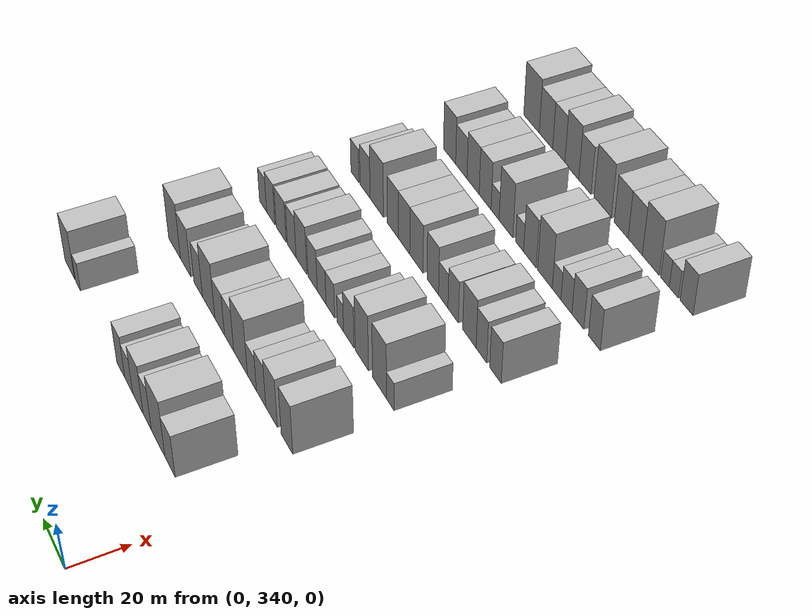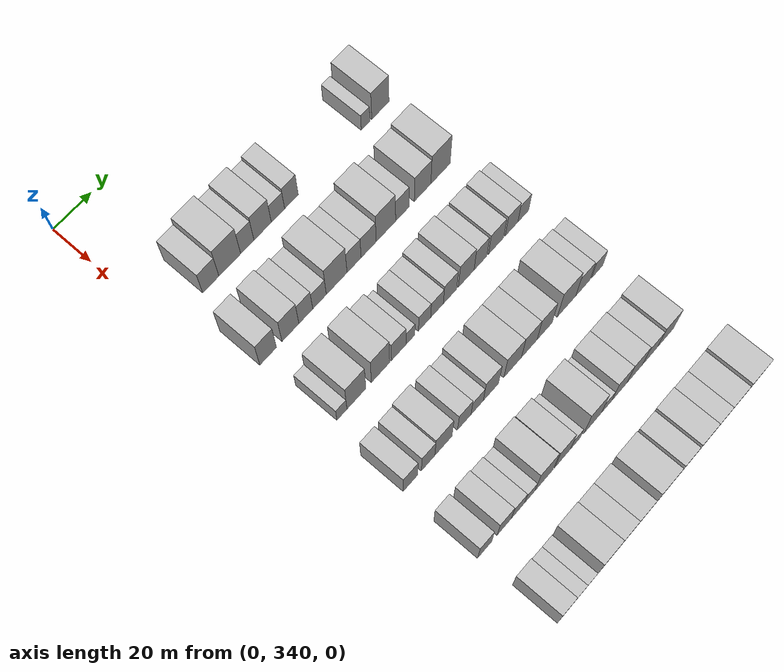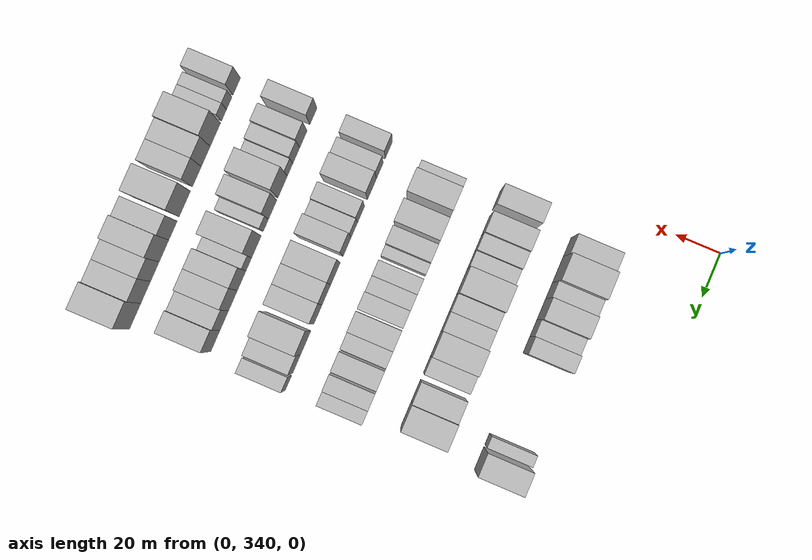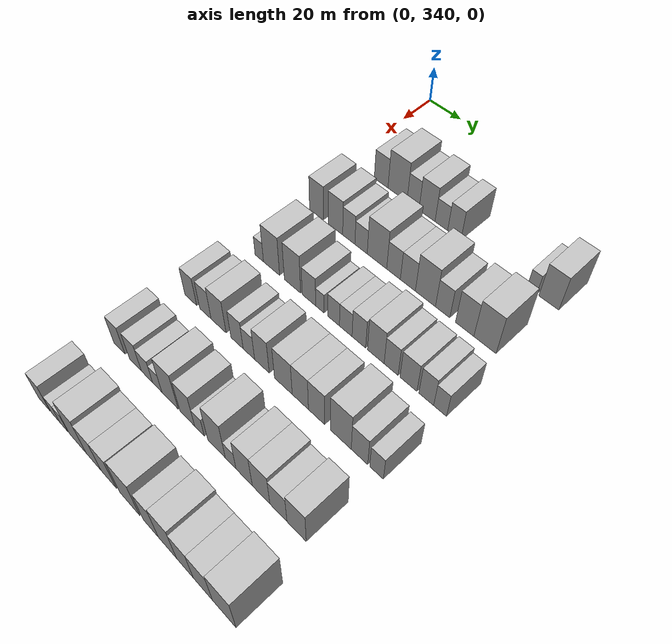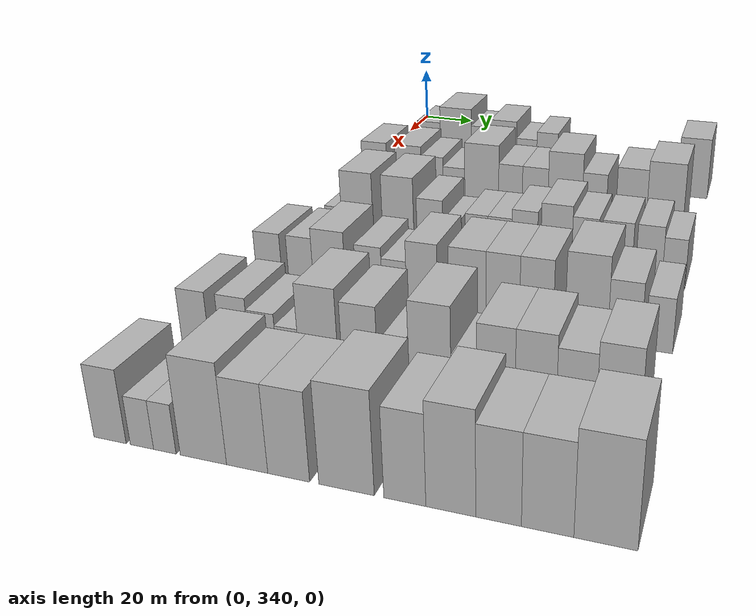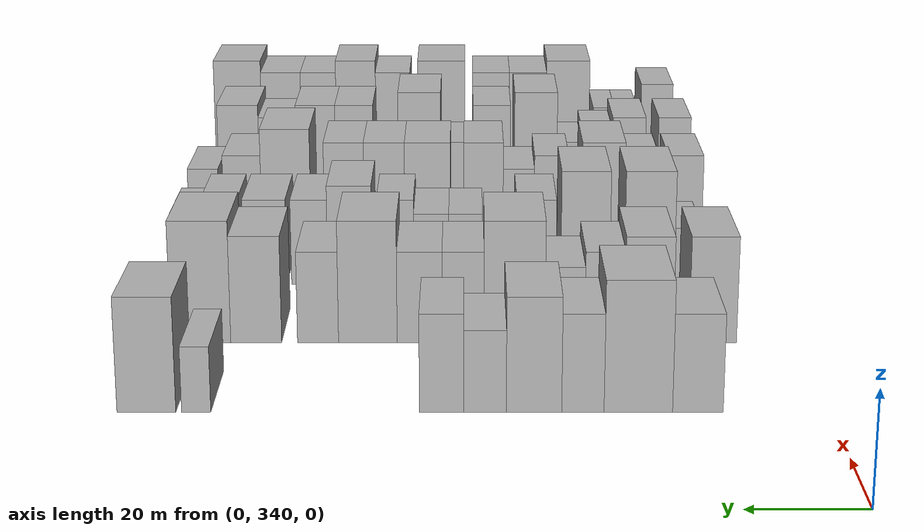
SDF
<sdf version="1.6">
 <world name="default">
  <model name="building_105">
   <static>1</static>
   <pose>50.0000 362.7475 0 0.000000 0.000000 0.000000</pose>
   <link name="link">
    <pose>0 0 9.00 0 0 0</pose>
    <collision name="collision"><geometry><box><size>20.0000 8.7498 18.0000</size></box></geometry></collision>
    <visual name="visual">
     <cast_shadows>0</cast_shadows>
     <geometry><box><size>20.0000 8.7498 18.0000</size></box></geometry>
     <material>
      <script>
       <uri>model://HANNAS_wall/materials/scripts</uri>
       <uri>model://HANNAS_wall/materials/textures</uri>
       <name>vrc/HANNAS_wall</name>
      </script>
     </material>
    </visual>
   </link>
  </model>
  <model name="building_106">
   <static>1</static>
   <pose>50.0000 373.0468 0 0.000000 0.000000 0.000000</pose>
   <link name="link">
    <pose>0 0 12.00 0 0 0</pose>
    <collision name="collision"><geometry><box><size>20.0000 11.8487 24.0000</size></box></geometry></collision>
    <visual name="visual">
     <cast_shadows>0</cast_shadows>
     <geometry><box><size>20.0000 11.8487 24.0000</size></box></geometry>
     <material>
      <script>
       <uri>model://HANNAS_wall/materials/scripts</uri>
       <uri>model://HANNAS_wall/materials/textures</uri>
       <name>vrc/HANNAS_wall</name>
      </script>
     </material>
    </visual>
   </link>
  </model>
  <model name="building_107">
   <static>1</static>
   <pose>50.0000 382.6306 0 0.000000 0.000000 0.000000</pose>
   <link name="link">
    <pose>0 0 9.00 0 0 0</pose>
    <collision name="collision"><geometry><box><size>20.0000 7.3190 18.0000</size></box></geometry></collision>
    <visual name="visual">
     <cast_shadows>0</cast_shadows>
     <geometry><box><size>20.0000 7.3190 18.0000</size></box></geometry>
     <material>
      <script>
       <uri>model://HANNAS_wall/materials/scripts</uri>
       <uri>model://HANNAS_wall/materials/textures</uri>
       <name>vrc/HANNAS_wall</name>
      </script>
     </material>
    </visual>
   </link>
  </model>
  <model name="building_108">
   <static>1</static>
   <pose>50.0000 391.0773 0 0.000000 0.000000 0.000000</pose>
   <link name="link">
    <pose>0 0 10.50 0 0 0</pose>
    <collision name="collision"><geometry><box><size>20.0000 9.5745 21.0000</size></box></geometry></collision>
    <visual name="visual">
     <cast_shadows>0</cast_shadows>
     <geometry><box><size>20.0000 9.5745 21.0000</size></box></geometry>
     <material>
      <script>
       <uri>model://HANNAS_wall/materials/scripts</uri>
       <uri>model://HANNAS_wall/materials/textures</uri>
       <name>vrc/HANNAS_wall</name>
      </script>
     </material>
    </visual>
   </link>
  </model>
  <model name="building_109">
   <static>1</static>
   <pose>50.0000 399.5561 0 0.000000 0.000000 0.000000</pose>
   <link name="link">
    <pose>0 0 7.50 0 0 0</pose>
    <collision name="collision"><geometry><box><size>20.0000 7.3830 15.0000</size></box></geometry></collision>
    <visual name="visual">
     <cast_shadows>0</cast_shadows>
     <geometry><box><size>20.0000 7.3830 15.0000</size></box></geometry>
     <material>
      <script>
       <uri>model://HANNAS_wall/materials/scripts</uri>
       <uri>model://HANNAS_wall/materials/textures</uri>
       <name>vrc/HANNAS_wall</name>
      </script>
     </material>
    </visual>
   </link>
  </model>
  <model name="building_110">
   <static>1</static>
   <pose>50.0000 407.0651 0 0.000000 0.000000 0.000000</pose>
   <link name="link">
    <pose>0 0 9.00 0 0 0</pose>
    <collision name="collision"><geometry><box><size>20.0000 7.6351 18.0000</size></box></geometry></collision>
    <visual name="visual">
     <cast_shadows>0</cast_shadows>
     <geometry><box><size>20.0000 7.6351 18.0000</size></box></geometry>
     <material>
      <script>
       <uri>model://HANNAS_wall/materials/scripts</uri>
       <uri>model://HANNAS_wall/materials/textures</uri>
       <name>vrc/HANNAS_wall</name>
      </script>
     </material>
    </visual>
   </link>
  </model>
  <model name="building_111">
   <static>1</static>
   <pose>50.0000 449.4591 0 0.000000 0.000000 0.000000</pose>
   <link name="link">
    <pose>0 0 6.00 0 0 0</pose>
    <collision name="collision"><geometry><box><size>20.0000 5.0510 12.0000</size></box></geometry></collision>
    <visual name="visual">
     <cast_shadows>0</cast_shadows>
     <geometry><box><size>20.0000 5.0510 12.0000</size></box></geometry>
     <material>
      <script>
       <uri>model://HANNAS_wall/materials/scripts</uri>
       <uri>model://HANNAS_wall/materials/textures</uri>
       <name>vrc/HANNAS_wall</name>
      </script>
     </material>
    </visual>
   </link>
  </model>
  <model name="building_112">
   <static>1</static>
   <pose>50.0000 458.0726 0 0.000000 0.000000 0.000000</pose>
   <link name="link">
    <pose>0 0 10.50 0 0 0</pose>
    <collision name="collision"><geometry><box><size>20.0000 10.1762 21.0000</size></box></geometry></collision>
    <visual name="visual">
     <cast_shadows>0</cast_shadows>
     <geometry><box><size>20.0000 10.1762 21.0000</size></box></geometry>
     <material>
      <script>
       <uri>model://HANNAS_wall/materials/scripts</uri>
       <uri>model://HANNAS_wall/materials/textures</uri>
       <name>vrc/HANNAS_wall</name>
      </script>
     </material>
    </visual>
   </link>
  </model>
  <model name="building_230">
   <static>1</static>
   <pose>85.0000 356.1797 0 0.000000 0.000000 0.000000</pose>
   <link name="link">
    <pose>0 0 10.50 0 0 0</pose>
    <collision name="collision"><geometry><box><size>20.0000 8.9611 21.0000</size></box></geometry></collision>
    <visual name="visual">
     <cast_shadows>0</cast_shadows>
     <geometry><box><size>20.0000 8.9611 21.0000</size></box></geometry>
     <material>
      <script>
       <uri>model://HANNAS_wall/materials/scripts</uri>
       <uri>model://HANNAS_wall/materials/textures</uri>
       <name>vrc/HANNAS_wall</name>
      </script>
     </material>
    </visual>
   </link>
  </model>
  <model name="building_231">
   <static>1</static>
   <pose>85.0000 368.2523 0 0.000000 0.000000 0.000000</pose>
   <link name="link">
    <pose>0 0 10.50 0 0 0</pose>
    <collision name="collision"><geometry><box><size>20.0000 9.1842 21.0000</size></box></geometry></collision>
    <visual name="visual">
     <cast_shadows>0</cast_shadows>
     <geometry><box><size>20.0000 9.1842 21.0000</size></box></geometry>
     <material>
      <script>
       <uri>model://HANNAS_wall/materials/scripts</uri>
       <uri>model://HANNAS_wall/materials/textures</uri>
       <name>vrc/HANNAS_wall</name>
      </script>
     </material>
    </visual>
   </link>
  </model>
  <model name="building_232">
   <static>1</static>
   <pose>85.0000 376.6171 0 0.000000 0.000000 0.000000</pose>
   <link name="link">
    <pose>0 0 9.00 0 0 0</pose>
    <collision name="collision"><geometry><box><size>20.0000 7.5454 18.0000</size></box></geometry></collision>
    <visual name="visual">
     <cast_shadows>0</cast_shadows>
     <geometry><box><size>20.0000 7.5454 18.0000</size></box></geometry>
     <material>
      <script>
       <uri>model://HANNAS_wall/materials/scripts</uri>
       <uri>model://HANNAS_wall/materials/textures</uri>
       <name>vrc/HANNAS_wall</name>
      </script>
     </material>
    </visual>
   </link>
  </model>
  <model name="building_233">
   <static>1</static>
   <pose>85.0000 384.1348 0 0.000000 0.000000 0.000000</pose>
   <link name="link">
    <pose>0 0 7.50 0 0 0</pose>
    <collision name="collision"><geometry><box><size>20.0000 7.4900 15.0000</size></box></geometry></collision>
    <visual name="visual">
     <cast_shadows>0</cast_shadows>
     <geometry><box><size>20.0000 7.4900 15.0000</size></box></geometry>
     <material>
      <script>
       <uri>model://HANNAS_wall/materials/scripts</uri>
       <uri>model://HANNAS_wall/materials/textures</uri>
       <name>vrc/HANNAS_wall</name>
      </script>
     </material>
    </visual>
   </link>
  </model>
  <model name="building_234">
   <static>1</static>
   <pose>85.0000 393.6439 0 0.000000 0.000000 0.000000</pose>
   <link name="link">
    <pose>0 0 12.00 0 0 0</pose>
    <collision name="collision"><geometry><box><size>20.0000 11.5282 24.0000</size></box></geometry></collision>
    <visual name="visual">
     <cast_shadows>0</cast_shadows>
     <geometry><box><size>20.0000 11.5282 24.0000</size></box></geometry>
     <material>
      <script>
       <uri>model://HANNAS_wall/materials/scripts</uri>
       <uri>model://HANNAS_wall/materials/textures</uri>
       <name>vrc/HANNAS_wall</name>
      </script>
     </material>
    </visual>
   </link>
  </model>
  <model name="building_235">
   <static>1</static>
   <pose>85.0000 403.3660 0 0.000000 0.000000 0.000000</pose>
   <link name="link">
    <pose>0 0 9.00 0 0 0</pose>
    <collision name="collision"><geometry><box><size>20.0000 7.9161 18.0000</size></box></geometry></collision>
    <visual name="visual">
     <cast_shadows>0</cast_shadows>
     <geometry><box><size>20.0000 7.9161 18.0000</size></box></geometry>
     <material>
      <script>
       <uri>model://HANNAS_wall/materials/scripts</uri>
       <uri>model://HANNAS_wall/materials/textures</uri>
       <name>vrc/HANNAS_wall</name>
      </script>
     </material>
    </visual>
   </link>
  </model>
  <model name="building_236">
   <static>1</static>
   <pose>85.0000 411.5755 0 0.000000 0.000000 0.000000</pose>
   <link name="link">
    <pose>0 0 9.00 0 0 0</pose>
    <collision name="collision"><geometry><box><size>20.0000 8.5029 18.0000</size></box></geometry></collision>
    <visual name="visual">
     <cast_shadows>0</cast_shadows>
     <geometry><box><size>20.0000 8.5029 18.0000</size></box></geometry>
     <material>
      <script>
       <uri>model://HANNAS_wall/materials/scripts</uri>
       <uri>model://HANNAS_wall/materials/textures</uri>
       <name>vrc/HANNAS_wall</name>
      </script>
     </material>
    </visual>
   </link>
  </model>
  <model name="building_237">
   <static>1</static>
   <pose>85.0000 421.3670 0 0.000000 0.000000 0.000000</pose>
   <link name="link">
    <pose>0 0 12.00 0 0 0</pose>
    <collision name="collision"><geometry><box><size>20.0000 11.0802 24.0000</size></box></geometry></collision>
    <visual name="visual">
     <cast_shadows>0</cast_shadows>
     <geometry><box><size>20.0000 11.0802 24.0000</size></box></geometry>
     <material>
      <script>
       <uri>model://HANNAS_wall/materials/scripts</uri>
       <uri>model://HANNAS_wall/materials/textures</uri>
       <name>vrc/HANNAS_wall</name>
      </script>
     </material>
    </visual>
   </link>
  </model>
  <model name="building_238">
   <static>1</static>
   <pose>85.0000 430.7820 0 0.000000 0.000000 0.000000</pose>
   <link name="link">
    <pose>0 0 9.00 0 0 0</pose>
    <collision name="collision"><geometry><box><size>20.0000 7.7497 18.0000</size></box></geometry></collision>
    <visual name="visual">
     <cast_shadows>0</cast_shadows>
     <geometry><box><size>20.0000 7.7497 18.0000</size></box></geometry>
     <material>
      <script>
       <uri>model://HANNAS_wall/materials/scripts</uri>
       <uri>model://HANNAS_wall/materials/textures</uri>
       <name>vrc/HANNAS_wall</name>
      </script>
     </material>
    </visual>
   </link>
  </model>
  <model name="building_239">
   <static>1</static>
   <pose>85.0000 442.4659 0 0.000000 0.000000 0.000000</pose>
   <link name="link">
    <pose>0 0 10.50 0 0 0</pose>
    <collision name="collision"><geometry><box><size>20.0000 9.6181 21.0000</size></box></geometry></collision>
    <visual name="visual">
     <cast_shadows>0</cast_shadows>
     <geometry><box><size>20.0000 9.6181 21.0000</size></box></geometry>
     <material>
      <script>
       <uri>model://HANNAS_wall/materials/scripts</uri>
       <uri>model://HANNAS_wall/materials/textures</uri>
       <name>vrc/HANNAS_wall</name>
      </script>
     </material>
    </visual>
   </link>
  </model>
  <model name="building_240">
   <static>1</static>
   <pose>85.0000 452.9337 0 0.000000 0.000000 0.000000</pose>
   <link name="link">
    <pose>0 0 12.00 0 0 0</pose>
    <collision name="collision"><geometry><box><size>20.0000 11.3174 24.0000</size></box></geometry></collision>
    <visual name="visual">
     <cast_shadows>0</cast_shadows>
     <geometry><box><size>20.0000 11.3174 24.0000</size></box></geometry>
     <material>
      <script>
       <uri>model://HANNAS_wall/materials/scripts</uri>
       <uri>model://HANNAS_wall/materials/textures</uri>
       <name>vrc/HANNAS_wall</name>
      </script>
     </material>
    </visual>
   </link>
  </model>
  <model name="building_364">
   <static>1</static>
   <pose>120.0000 357.3686 0 0.000000 0.000000 0.000000</pose>
   <link name="link">
    <pose>0 0 6.00 0 0 0</pose>
    <collision name="collision"><geometry><box><size>20.0000 5.4508 12.0000</size></box></geometry></collision>
    <visual name="visual">
     <cast_shadows>0</cast_shadows>
     <geometry><box><size>20.0000 5.4508 12.0000</size></box></geometry>
     <material>
      <script>
       <uri>model://HANNAS_wall/materials/scripts</uri>
       <uri>model://HANNAS_wall/materials/textures</uri>
       <name>vrc/HANNAS_wall</name>
      </script>
     </material>
    </visual>
   </link>
  </model>
  <model name="building_365">
   <static>1</static>
   <pose>120.0000 365.2294 0 0.000000 0.000000 0.000000</pose>
   <link name="link">
    <pose>0 0 12.00 0 0 0</pose>
    <collision name="collision"><geometry><box><size>20.0000 10.2707 24.0000</size></box></geometry></collision>
    <visual name="visual">
     <cast_shadows>0</cast_shadows>
     <geometry><box><size>20.0000 10.2707 24.0000</size></box></geometry>
     <material>
      <script>
       <uri>model://HANNAS_wall/materials/scripts</uri>
       <uri>model://HANNAS_wall/materials/textures</uri>
       <name>vrc/HANNAS_wall</name>
      </script>
     </material>
    </visual>
   </link>
  </model>
  <model name="building_366">
   <static>1</static>
   <pose>120.0000 378.3739 0 0.000000 0.000000 0.000000</pose>
   <link name="link">
    <pose>0 0 12.00 0 0 0</pose>
    <collision name="collision"><geometry><box><size>20.0000 10.0185 24.0000</size></box></geometry></collision>
    <visual name="visual">
     <cast_shadows>0</cast_shadows>
     <geometry><box><size>20.0000 10.0185 24.0000</size></box></geometry>
     <material>
      <script>
       <uri>model://HANNAS_wall/materials/scripts</uri>
       <uri>model://HANNAS_wall/materials/textures</uri>
       <name>vrc/HANNAS_wall</name>
      </script>
     </material>
    </visual>
   </link>
  </model>
  <model name="building_367">
   <static>1</static>
   <pose>120.0000 388.4250 0 0.000000 0.000000 0.000000</pose>
   <link name="link">
    <pose>0 0 9.00 0 0 0</pose>
    <collision name="collision"><geometry><box><size>20.0000 8.0837 18.0000</size></box></geometry></collision>
    <visual name="visual">
     <cast_shadows>0</cast_shadows>
     <geometry><box><size>20.0000 8.0837 18.0000</size></box></geometry>
     <material>
      <script>
       <uri>model://HANNAS_wall/materials/scripts</uri>
       <uri>model://HANNAS_wall/materials/textures</uri>
       <name>vrc/HANNAS_wall</name>
      </script>
     </material>
    </visual>
   </link>
  </model>
  <model name="building_368">
   <static>1</static>
   <pose>120.0000 394.9492 0 0.000000 0.000000 0.000000</pose>
   <link name="link">
    <pose>0 0 6.00 0 0 0</pose>
    <collision name="collision"><geometry><box><size>20.0000 4.9647 12.0000</size></box></geometry></collision>
    <visual name="visual">
     <cast_shadows>0</cast_shadows>
     <geometry><box><size>20.0000 4.9647 12.0000</size></box></geometry>
     <material>
      <script>
       <uri>model://HANNAS_wall/materials/scripts</uri>
       <uri>model://HANNAS_wall/materials/textures</uri>
       <name>vrc/HANNAS_wall</name>
      </script>
     </material>
    </visual>
   </link>
  </model>
  <model name="building_369">
   <static>1</static>
   <pose>120.0000 402.8862 0 0.000000 0.000000 0.000000</pose>
   <link name="link">
    <pose>0 0 7.50 0 0 0</pose>
    <collision name="collision"><geometry><box><size>20.0000 6.9094 15.0000</size></box></geometry></collision>
    <visual name="visual">
     <cast_shadows>0</cast_shadows>
     <geometry><box><size>20.0000 6.9094 15.0000</size></box></geometry>
     <material>
      <script>
       <uri>model://HANNAS_wall/materials/scripts</uri>
       <uri>model://HANNAS_wall/materials/textures</uri>
       <name>vrc/HANNAS_wall</name>
      </script>
     </material>
    </visual>
   </link>
  </model>
  <model name="building_370">
   <static>1</static>
   <pose>120.0000 409.9293 0 0.000000 0.000000 0.000000</pose>
   <link name="link">
    <pose>0 0 7.50 0 0 0</pose>
    <collision name="collision"><geometry><box><size>20.0000 7.1768 15.0000</size></box></geometry></collision>
    <visual name="visual">
     <cast_shadows>0</cast_shadows>
     <geometry><box><size>20.0000 7.1768 15.0000</size></box></geometry>
     <material>
      <script>
       <uri>model://HANNAS_wall/materials/scripts</uri>
       <uri>model://HANNAS_wall/materials/textures</uri>
       <name>vrc/HANNAS_wall</name>
      </script>
     </material>
    </visual>
   </link>
  </model>
  <model name="building_371">
   <static>1</static>
   <pose>120.0000 417.3123 0 0.000000 0.000000 0.000000</pose>
   <link name="link">
    <pose>0 0 9.00 0 0 0</pose>
    <collision name="collision"><geometry><box><size>20.0000 7.5891 18.0000</size></box></geometry></collision>
    <visual name="visual">
     <cast_shadows>0</cast_shadows>
     <geometry><box><size>20.0000 7.5891 18.0000</size></box></geometry>
     <material>
      <script>
       <uri>model://HANNAS_wall/materials/scripts</uri>
       <uri>model://HANNAS_wall/materials/textures</uri>
       <name>vrc/HANNAS_wall</name>
      </script>
     </material>
    </visual>
   </link>
  </model>
  <model name="building_372">
   <static>1</static>
   <pose>120.0000 426.6269 0 0.000000 0.000000 0.000000</pose>
   <link name="link">
    <pose>0 0 10.50 0 0 0</pose>
    <collision name="collision"><geometry><box><size>20.0000 9.0400 21.0000</size></box></geometry></collision>
    <visual name="visual">
     <cast_shadows>0</cast_shadows>
     <geometry><box><size>20.0000 9.0400 21.0000</size></box></geometry>
     <material>
      <script>
       <uri>model://HANNAS_wall/materials/scripts</uri>
       <uri>model://HANNAS_wall/materials/textures</uri>
       <name>vrc/HANNAS_wall</name>
      </script>
     </material>
    </visual>
   </link>
  </model>
  <model name="building_373">
   <static>1</static>
   <pose>120.0000 434.8609 0 0.000000 0.000000 0.000000</pose>
   <link name="link">
    <pose>0 0 9.00 0 0 0</pose>
    <collision name="collision"><geometry><box><size>20.0000 7.4280 18.0000</size></box></geometry></collision>
    <visual name="visual">
     <cast_shadows>0</cast_shadows>
     <geometry><box><size>20.0000 7.4280 18.0000</size></box></geometry>
     <material>
      <script>
       <uri>model://HANNAS_wall/materials/scripts</uri>
       <uri>model://HANNAS_wall/materials/textures</uri>
       <name>vrc/HANNAS_wall</name>
      </script>
     </material>
    </visual>
   </link>
  </model>
  <model name="building_374">
   <static>1</static>
   <pose>120.0000 443.9713 0 0.000000 0.000000 0.000000</pose>
   <link name="link">
    <pose>0 0 9.00 0 0 0</pose>
    <collision name="collision"><geometry><box><size>20.0000 8.7929 18.0000</size></box></geometry></collision>
    <visual name="visual">
     <cast_shadows>0</cast_shadows>
     <geometry><box><size>20.0000 8.7929 18.0000</size></box></geometry>
     <material>
      <script>
       <uri>model://HANNAS_wall/materials/scripts</uri>
       <uri>model://HANNAS_wall/materials/textures</uri>
       <name>vrc/HANNAS_wall</name>
      </script>
     </material>
    </visual>
   </link>
  </model>
  <model name="building_375">
   <static>1</static>
   <pose>120.0000 453.0959 0 0.000000 0.000000 0.000000</pose>
   <link name="link">
    <pose>0 0 9.00 0 0 0</pose>
    <collision name="collision"><geometry><box><size>20.0000 7.4563 18.0000</size></box></geometry></collision>
    <visual name="visual">
     <cast_shadows>0</cast_shadows>
     <geometry><box><size>20.0000 7.4563 18.0000</size></box></geometry>
     <material>
      <script>
       <uri>model://HANNAS_wall/materials/scripts</uri>
       <uri>model://HANNAS_wall/materials/textures</uri>
       <name>vrc/HANNAS_wall</name>
      </script>
     </material>
    </visual>
   </link>
  </model>
  <model name="building_376">
   <static>1</static>
   <pose>120.0000 460.0049 0 0.000000 0.000000 0.000000</pose>
   <link name="link">
    <pose>0 0 7.50 0 0 0</pose>
    <collision name="collision"><geometry><box><size>20.0000 6.3618 15.0000</size></box></geometry></collision>
    <visual name="visual">
     <cast_shadows>0</cast_shadows>
     <geometry><box><size>20.0000 6.3618 15.0000</size></box></geometry>
     <material>
      <script>
       <uri>model://HANNAS_wall/materials/scripts</uri>
       <uri>model://HANNAS_wall/materials/textures</uri>
       <name>vrc/HANNAS_wall</name>
      </script>
     </material>
    </visual>
   </link>
  </model>
  <model name="building_495">
   <static>1</static>
   <pose>155.0000 354.5307 0 0.000000 0.000000 0.000000</pose>
   <link name="link">
    <pose>0 0 9.00 0 0 0</pose>
    <collision name="collision"><geometry><box><size>20.0000 7.7927 18.0000</size></box></geometry></collision>
    <visual name="visual">
     <cast_shadows>0</cast_shadows>
     <geometry><box><size>20.0000 7.7927 18.0000</size></box></geometry>
     <material>
      <script>
       <uri>model://HANNAS_wall/materials/scripts</uri>
       <uri>model://HANNAS_wall/materials/textures</uri>
       <name>vrc/HANNAS_wall</name>
      </script>
     </material>
    </visual>
   </link>
  </model>
  <model name="building_496">
   <static>1</static>
   <pose>155.0000 364.1019 0 0.000000 0.000000 0.000000</pose>
   <link name="link">
    <pose>0 0 9.00 0 0 0</pose>
    <collision name="collision"><geometry><box><size>20.0000 7.3497 18.0000</size></box></geometry></collision>
    <visual name="visual">
     <cast_shadows>0</cast_shadows>
     <geometry><box><size>20.0000 7.3497 18.0000</size></box></geometry>
     <material>
      <script>
       <uri>model://HANNAS_wall/materials/scripts</uri>
       <uri>model://HANNAS_wall/materials/textures</uri>
       <name>vrc/HANNAS_wall</name>
      </script>
     </material>
    </visual>
   </link>
  </model>
  <model name="building_497">
   <static>1</static>
   <pose>155.0000 372.5090 0 0.000000 0.000000 0.000000</pose>
   <link name="link">
    <pose>0 0 10.50 0 0 0</pose>
    <collision name="collision"><geometry><box><size>20.0000 9.4645 21.0000</size></box></geometry></collision>
    <visual name="visual">
     <cast_shadows>0</cast_shadows>
     <geometry><box><size>20.0000 9.4645 21.0000</size></box></geometry>
     <material>
      <script>
       <uri>model://HANNAS_wall/materials/scripts</uri>
       <uri>model://HANNAS_wall/materials/textures</uri>
       <name>vrc/HANNAS_wall</name>
      </script>
     </material>
    </visual>
   </link>
  </model>
  <model name="building_498">
   <static>1</static>
   <pose>155.0000 383.9896 0 0.000000 0.000000 0.000000</pose>
   <link name="link">
    <pose>0 0 9.00 0 0 0</pose>
    <collision name="collision"><geometry><box><size>20.0000 7.4967 18.0000</size></box></geometry></collision>
    <visual name="visual">
     <cast_shadows>0</cast_shadows>
     <geometry><box><size>20.0000 7.4967 18.0000</size></box></geometry>
     <material>
      <script>
       <uri>model://HANNAS_wall/materials/scripts</uri>
       <uri>model://HANNAS_wall/materials/textures</uri>
       <name>vrc/HANNAS_wall</name>
      </script>
     </material>
    </visual>
   </link>
  </model>
  <model name="building_499">
   <static>1</static>
   <pose>155.0000 391.1808 0 0.000000 0.000000 0.000000</pose>
   <link name="link">
    <pose>0 0 7.50 0 0 0</pose>
    <collision name="collision"><geometry><box><size>20.0000 6.8855 15.0000</size></box></geometry></collision>
    <visual name="visual">
     <cast_shadows>0</cast_shadows>
     <geometry><box><size>20.0000 6.8855 15.0000</size></box></geometry>
     <material>
      <script>
       <uri>model://HANNAS_wall/materials/scripts</uri>
       <uri>model://HANNAS_wall/materials/textures</uri>
       <name>vrc/HANNAS_wall</name>
      </script>
     </material>
    </visual>
   </link>
  </model>
  <model name="building_500">
   <static>1</static>
   <pose>155.0000 398.9348 0 0.000000 0.000000 0.000000</pose>
   <link name="link">
    <pose>0 0 10.50 0 0 0</pose>
    <collision name="collision"><geometry><box><size>20.0000 8.6225 21.0000</size></box></geometry></collision>
    <visual name="visual">
     <cast_shadows>0</cast_shadows>
     <geometry><box><size>20.0000 8.6225 21.0000</size></box></geometry>
     <material>
      <script>
       <uri>model://HANNAS_wall/materials/scripts</uri>
       <uri>model://HANNAS_wall/materials/textures</uri>
       <name>vrc/HANNAS_wall</name>
      </script>
     </material>
    </visual>
   </link>
  </model>
  <model name="building_501">
   <static>1</static>
   <pose>155.0000 411.2837 0 0.000000 0.000000 0.000000</pose>
   <link name="link">
    <pose>0 0 10.50 0 0 0</pose>
    <collision name="collision"><geometry><box><size>20.0000 10.0753 21.0000</size></box></geometry></collision>
    <visual name="visual">
     <cast_shadows>0</cast_shadows>
     <geometry><box><size>20.0000 10.0753 21.0000</size></box></geometry>
     <material>
      <script>
       <uri>model://HANNAS_wall/materials/scripts</uri>
       <uri>model://HANNAS_wall/materials/textures</uri>
       <name>vrc/HANNAS_wall</name>
      </script>
     </material>
    </visual>
   </link>
  </model>
  <model name="building_502">
   <static>1</static>
   <pose>155.0000 420.8145 0 0.000000 0.000000 0.000000</pose>
   <link name="link">
    <pose>0 0 10.50 0 0 0</pose>
    <collision name="collision"><geometry><box><size>20.0000 8.9862 21.0000</size></box></geometry></collision>
    <visual name="visual">
     <cast_shadows>0</cast_shadows>
     <geometry><box><size>20.0000 8.9862 21.0000</size></box></geometry>
     <material>
      <script>
       <uri>model://HANNAS_wall/materials/scripts</uri>
       <uri>model://HANNAS_wall/materials/textures</uri>
       <name>vrc/HANNAS_wall</name>
      </script>
     </material>
    </visual>
   </link>
  </model>
  <model name="building_503">
   <static>1</static>
   <pose>155.0000 429.6980 0 0.000000 0.000000 0.000000</pose>
   <link name="link">
    <pose>0 0 10.50 0 0 0</pose>
    <collision name="collision"><geometry><box><size>20.0000 8.7809 21.0000</size></box></geometry></collision>
    <visual name="visual">
     <cast_shadows>0</cast_shadows>
     <geometry><box><size>20.0000 8.7809 21.0000</size></box></geometry>
     <material>
      <script>
       <uri>model://HANNAS_wall/materials/scripts</uri>
       <uri>model://HANNAS_wall/materials/textures</uri>
       <name>vrc/HANNAS_wall</name>
      </script>
     </material>
    </visual>
   </link>
  </model>
  <model name="building_504">
   <static>1</static>
   <pose>155.0000 442.5212 0 0.000000 0.000000 0.000000</pose>
   <link name="link">
    <pose>0 0 12.00 0 0 0</pose>
    <collision name="collision"><geometry><box><size>20.0000 10.8654 24.0000</size></box></geometry></collision>
    <visual name="visual">
     <cast_shadows>0</cast_shadows>
     <geometry><box><size>20.0000 10.8654 24.0000</size></box></geometry>
     <material>
      <script>
       <uri>model://HANNAS_wall/materials/scripts</uri>
       <uri>model://HANNAS_wall/materials/textures</uri>
       <name>vrc/HANNAS_wall</name>
      </script>
     </material>
    </visual>
   </link>
  </model>
  <model name="building_505">
   <static>1</static>
   <pose>155.0000 452.1197 0 0.000000 0.000000 0.000000</pose>
   <link name="link">
    <pose>0 0 9.00 0 0 0</pose>
    <collision name="collision"><geometry><box><size>20.0000 8.3316 18.0000</size></box></geometry></collision>
    <visual name="visual">
     <cast_shadows>0</cast_shadows>
     <geometry><box><size>20.0000 8.3316 18.0000</size></box></geometry>
     <material>
      <script>
       <uri>model://HANNAS_wall/materials/scripts</uri>
       <uri>model://HANNAS_wall/materials/textures</uri>
       <name>vrc/HANNAS_wall</name>
      </script>
     </material>
    </visual>
   </link>
  </model>
  <model name="building_506">
   <static>1</static>
   <pose>155.0000 460.6438 0 0.000000 0.000000 0.000000</pose>
   <link name="link">
    <pose>0 0 7.50 0 0 0</pose>
    <collision name="collision"><geometry><box><size>20.0000 6.7167 15.0000</size></box></geometry></collision>
    <visual name="visual">
     <cast_shadows>0</cast_shadows>
     <geometry><box><size>20.0000 6.7167 15.0000</size></box></geometry>
     <material>
      <script>
       <uri>model://HANNAS_wall/materials/scripts</uri>
       <uri>model://HANNAS_wall/materials/textures</uri>
       <name>vrc/HANNAS_wall</name>
      </script>
     </material>
    </visual>
   </link>
  </model>
  <model name="building_610">
   <static>1</static>
   <pose>190.0000 353.5722 0 0.000000 0.000000 0.000000</pose>
   <link name="link">
    <pose>0 0 9.00 0 0 0</pose>
    <collision name="collision"><geometry><box><size>20.0000 7.6111 18.0000</size></box></geometry></collision>
    <visual name="visual">
     <cast_shadows>0</cast_shadows>
     <geometry><box><size>20.0000 7.6111 18.0000</size></box></geometry>
     <material>
      <script>
       <uri>model://HANNAS_wall/materials/scripts</uri>
       <uri>model://HANNAS_wall/materials/textures</uri>
       <name>vrc/HANNAS_wall</name>
      </script>
     </material>
    </visual>
   </link>
  </model>
  <model name="building_611">
   <static>1</static>
   <pose>190.0000 364.2833 0 0.000000 0.000000 0.000000</pose>
   <link name="link">
    <pose>0 0 9.00 0 0 0</pose>
    <collision name="collision"><geometry><box><size>20.0000 7.8110 18.0000</size></box></geometry></collision>
    <visual name="visual">
     <cast_shadows>0</cast_shadows>
     <geometry><box><size>20.0000 7.8110 18.0000</size></box></geometry>
     <material>
      <script>
       <uri>model://HANNAS_wall/materials/scripts</uri>
       <uri>model://HANNAS_wall/materials/textures</uri>
       <name>vrc/HANNAS_wall</name>
      </script>
     </material>
    </visual>
   </link>
  </model>
  <model name="building_612">
   <static>1</static>
   <pose>190.0000 371.8045 0 0.000000 0.000000 0.000000</pose>
   <link name="link">
    <pose>0 0 7.50 0 0 0</pose>
    <collision name="collision"><geometry><box><size>20.0000 7.2314 15.0000</size></box></geometry></collision>
    <visual name="visual">
     <cast_shadows>0</cast_shadows>
     <geometry><box><size>20.0000 7.2314 15.0000</size></box></geometry>
     <material>
      <script>
       <uri>model://HANNAS_wall/materials/scripts</uri>
       <uri>model://HANNAS_wall/materials/textures</uri>
       <name>vrc/HANNAS_wall</name>
      </script>
     </material>
    </visual>
   </link>
  </model>
  <model name="building_613">
   <static>1</static>
   <pose>190.0000 378.3472 0 0.000000 0.000000 0.000000</pose>
   <link name="link">
    <pose>0 0 6.00 0 0 0</pose>
    <collision name="collision"><geometry><box><size>20.0000 5.8540 12.0000</size></box></geometry></collision>
    <visual name="visual">
     <cast_shadows>0</cast_shadows>
     <geometry><box><size>20.0000 5.8540 12.0000</size></box></geometry>
     <material>
      <script>
       <uri>model://HANNAS_wall/materials/scripts</uri>
       <uri>model://HANNAS_wall/materials/textures</uri>
       <name>vrc/HANNAS_wall</name>
      </script>
     </material>
    </visual>
   </link>
  </model>
  <model name="building_614">
   <static>1</static>
   <pose>190.0000 386.2978 0 0.000000 0.000000 0.000000</pose>
   <link name="link">
    <pose>0 0 12.00 0 0 0</pose>
    <collision name="collision"><geometry><box><size>20.0000 10.0472 24.0000</size></box></geometry></collision>
    <visual name="visual">
     <cast_shadows>0</cast_shadows>
     <geometry><box><size>20.0000 10.0472 24.0000</size></box></geometry>
     <material>
      <script>
       <uri>model://HANNAS_wall/materials/scripts</uri>
       <uri>model://HANNAS_wall/materials/textures</uri>
       <name>vrc/HANNAS_wall</name>
      </script>
     </material>
    </visual>
   </link>
  </model>
  <model name="building_615">
   <static>1</static>
   <pose>190.0000 396.7403 0 0.000000 0.000000 0.000000</pose>
   <link name="link">
    <pose>0 0 10.50 0 0 0</pose>
    <collision name="collision"><geometry><box><size>20.0000 8.8378 21.0000</size></box></geometry></collision>
    <visual name="visual">
     <cast_shadows>0</cast_shadows>
     <geometry><box><size>20.0000 8.8378 21.0000</size></box></geometry>
     <material>
      <script>
       <uri>model://HANNAS_wall/materials/scripts</uri>
       <uri>model://HANNAS_wall/materials/textures</uri>
       <name>vrc/HANNAS_wall</name>
      </script>
     </material>
    </visual>
   </link>
  </model>
  <model name="building_616">
   <static>1</static>
   <pose>190.0000 403.9627 0 0.000000 0.000000 0.000000</pose>
   <link name="link">
    <pose>0 0 6.00 0 0 0</pose>
    <collision name="collision"><geometry><box><size>20.0000 5.6070 12.0000</size></box></geometry></collision>
    <visual name="visual">
     <cast_shadows>0</cast_shadows>
     <geometry><box><size>20.0000 5.6070 12.0000</size></box></geometry>
     <material>
      <script>
       <uri>model://HANNAS_wall/materials/scripts</uri>
       <uri>model://HANNAS_wall/materials/textures</uri>
       <name>vrc/HANNAS_wall</name>
      </script>
     </material>
    </visual>
   </link>
  </model>
  <model name="building_617">
   <static>1</static>
   <pose>190.0000 413.7937 0 0.000000 0.000000 0.000000</pose>
   <link name="link">
    <pose>0 0 12.00 0 0 0</pose>
    <collision name="collision"><geometry><box><size>20.0000 10.0551 24.0000</size></box></geometry></collision>
    <visual name="visual">
     <cast_shadows>0</cast_shadows>
     <geometry><box><size>20.0000 10.0551 24.0000</size></box></geometry>
     <material>
      <script>
       <uri>model://HANNAS_wall/materials/scripts</uri>
       <uri>model://HANNAS_wall/materials/textures</uri>
       <name>vrc/HANNAS_wall</name>
      </script>
     </material>
    </visual>
   </link>
  </model>
  <model name="building_618">
   <static>1</static>
   <pose>190.0000 421.7807 0 0.000000 0.000000 0.000000</pose>
   <link name="link">
    <pose>0 0 6.00 0 0 0</pose>
    <collision name="collision"><geometry><box><size>20.0000 5.9187 12.0000</size></box></geometry></collision>
    <visual name="visual">
     <cast_shadows>0</cast_shadows>
     <geometry><box><size>20.0000 5.9187 12.0000</size></box></geometry>
     <material>
      <script>
       <uri>model://HANNAS_wall/materials/scripts</uri>
       <uri>model://HANNAS_wall/materials/textures</uri>
       <name>vrc/HANNAS_wall</name>
      </script>
     </material>
    </visual>
   </link>
  </model>
  <model name="building_619">
   <static>1</static>
   <pose>190.0000 429.2061 0 0.000000 0.000000 0.000000</pose>
   <link name="link">
    <pose>0 0 10.50 0 0 0</pose>
    <collision name="collision"><geometry><box><size>20.0000 8.9321 21.0000</size></box></geometry></collision>
    <visual name="visual">
     <cast_shadows>0</cast_shadows>
     <geometry><box><size>20.0000 8.9321 21.0000</size></box></geometry>
     <material>
      <script>
       <uri>model://HANNAS_wall/materials/scripts</uri>
       <uri>model://HANNAS_wall/materials/textures</uri>
       <name>vrc/HANNAS_wall</name>
      </script>
     </material>
    </visual>
   </link>
  </model>
  <model name="building_620">
   <static>1</static>
   <pose>190.0000 438.3169 0 0.000000 0.000000 0.000000</pose>
   <link name="link">
    <pose>0 0 10.50 0 0 0</pose>
    <collision name="collision"><geometry><box><size>20.0000 9.2895 21.0000</size></box></geometry></collision>
    <visual name="visual">
     <cast_shadows>0</cast_shadows>
     <geometry><box><size>20.0000 9.2895 21.0000</size></box></geometry>
     <material>
      <script>
       <uri>model://HANNAS_wall/materials/scripts</uri>
       <uri>model://HANNAS_wall/materials/textures</uri>
       <name>vrc/HANNAS_wall</name>
      </script>
     </material>
    </visual>
   </link>
  </model>
  <model name="building_621">
   <static>1</static>
   <pose>190.0000 447.3620 0 0.000000 0.000000 0.000000</pose>
   <link name="link">
    <pose>0 0 9.00 0 0 0</pose>
    <collision name="collision"><geometry><box><size>20.0000 8.8009 18.0000</size></box></geometry></collision>
    <visual name="visual">
     <cast_shadows>0</cast_shadows>
     <geometry><box><size>20.0000 8.8009 18.0000</size></box></geometry>
     <material>
      <script>
       <uri>model://HANNAS_wall/materials/scripts</uri>
       <uri>model://HANNAS_wall/materials/textures</uri>
       <name>vrc/HANNAS_wall</name>
      </script>
     </material>
    </visual>
   </link>
  </model>
  <model name="building_622">
   <static>1</static>
   <pose>190.0000 456.5811 0 0.000000 0.000000 0.000000</pose>
   <link name="link">
    <pose>0 0 10.50 0 0 0</pose>
    <collision name="collision"><geometry><box><size>20.0000 9.6372 21.0000</size></box></geometry></collision>
    <visual name="visual">
     <cast_shadows>0</cast_shadows>
     <geometry><box><size>20.0000 9.6372 21.0000</size></box></geometry>
     <material>
      <script>
       <uri>model://HANNAS_wall/materials/scripts</uri>
       <uri>model://HANNAS_wall/materials/textures</uri>
       <name>vrc/HANNAS_wall</name>
      </script>
     </material>
    </visual>
   </link>
  </model>
  <model name="building_735">
   <static>1</static>
   <pose>225.0000 354.6501 0 0.000000 0.000000 0.000000</pose>
   <link name="link">
    <pose>0 0 9.00 0 0 0</pose>
    <collision name="collision"><geometry><box><size>20.0000 7.9692 18.0000</size></box></geometry></collision>
    <visual name="visual">
     <cast_shadows>0</cast_shadows>
     <geometry><box><size>20.0000 7.9692 18.0000</size></box></geometry>
     <material>
      <script>
       <uri>model://HANNAS_wall/materials/scripts</uri>
       <uri>model://HANNAS_wall/materials/textures</uri>
       <name>vrc/HANNAS_wall</name>
      </script>
     </material>
    </visual>
   </link>
  </model>
  <model name="building_736">
   <static>1</static>
   <pose>225.0000 362.4654 0 0.000000 0.000000 0.000000</pose>
   <link name="link">
    <pose>0 0 6.00 0 0 0</pose>
    <collision name="collision"><geometry><box><size>20.0000 5.6614 12.0000</size></box></geometry></collision>
    <visual name="visual">
     <cast_shadows>0</cast_shadows>
     <geometry><box><size>20.0000 5.6614 12.0000</size></box></geometry>
     <material>
      <script>
       <uri>model://HANNAS_wall/materials/scripts</uri>
       <uri>model://HANNAS_wall/materials/textures</uri>
       <name>vrc/HANNAS_wall</name>
      </script>
     </material>
    </visual>
   </link>
  </model>
  <model name="building_737">
   <static>1</static>
   <pose>225.0000 367.9854 0 0.000000 0.000000 0.000000</pose>
   <link name="link">
    <pose>0 0 6.00 0 0 0</pose>
    <collision name="collision"><geometry><box><size>20.0000 5.3786 12.0000</size></box></geometry></collision>
    <visual name="visual">
     <cast_shadows>0</cast_shadows>
     <geometry><box><size>20.0000 5.3786 12.0000</size></box></geometry>
     <material>
      <script>
       <uri>model://HANNAS_wall/materials/scripts</uri>
       <uri>model://HANNAS_wall/materials/textures</uri>
       <name>vrc/HANNAS_wall</name>
      </script>
     </material>
    </visual>
   </link>
  </model>
  <model name="building_738">
   <static>1</static>
   <pose>225.0000 377.0829 0 0.000000 0.000000 0.000000</pose>
   <link name="link">
    <pose>0 0 12.00 0 0 0</pose>
    <collision name="collision"><geometry><box><size>20.0000 10.8163 24.0000</size></box></geometry></collision>
    <visual name="visual">
     <cast_shadows>0</cast_shadows>
     <geometry><box><size>20.0000 10.8163 24.0000</size></box></geometry>
     <material>
      <script>
       <uri>model://HANNAS_wall/materials/scripts</uri>
       <uri>model://HANNAS_wall/materials/textures</uri>
       <name>vrc/HANNAS_wall</name>
      </script>
     </material>
    </visual>
   </link>
  </model>
  <model name="building_739">
   <static>1</static>
   <pose>225.0000 387.1657 0 0.000000 0.000000 0.000000</pose>
   <link name="link">
    <pose>0 0 10.50 0 0 0</pose>
    <collision name="collision"><geometry><box><size>20.0000 9.3495 21.0000</size></box></geometry></collision>
    <visual name="visual">
     <cast_shadows>0</cast_shadows>
     <geometry><box><size>20.0000 9.3495 21.0000</size></box></geometry>
     <material>
      <script>
       <uri>model://HANNAS_wall/materials/scripts</uri>
       <uri>model://HANNAS_wall/materials/textures</uri>
       <name>vrc/HANNAS_wall</name>
      </script>
     </material>
    </visual>
   </link>
  </model>
  <model name="building_740">
   <static>1</static>
   <pose>225.0000 396.4682 0 0.000000 0.000000 0.000000</pose>
   <link name="link">
    <pose>0 0 10.50 0 0 0</pose>
    <collision name="collision"><geometry><box><size>20.0000 9.2553 21.0000</size></box></geometry></collision>
    <visual name="visual">
     <cast_shadows>0</cast_shadows>
     <geometry><box><size>20.0000 9.2553 21.0000</size></box></geometry>
     <material>
      <script>
       <uri>model://HANNAS_wall/materials/scripts</uri>
       <uri>model://HANNAS_wall/materials/textures</uri>
       <name>vrc/HANNAS_wall</name>
      </script>
     </material>
    </visual>
   </link>
  </model>
  <model name="building_741">
   <static>1</static>
   <pose>225.0000 409.0138 0 0.000000 0.000000 0.000000</pose>
   <link name="link">
    <pose>0 0 12.00 0 0 0</pose>
    <collision name="collision"><geometry><box><size>20.0000 11.8360 24.0000</size></box></geometry></collision>
    <visual name="visual">
     <cast_shadows>0</cast_shadows>
     <geometry><box><size>20.0000 11.8360 24.0000</size></box></geometry>
     <material>
      <script>
       <uri>model://HANNAS_wall/materials/scripts</uri>
       <uri>model://HANNAS_wall/materials/textures</uri>
       <name>vrc/HANNAS_wall</name>
      </script>
     </material>
    </visual>
   </link>
  </model>
  <model name="building_742">
   <static>1</static>
   <pose>225.0000 421.2598 0 0.000000 0.000000 0.000000</pose>
   <link name="link">
    <pose>0 0 10.50 0 0 0</pose>
    <collision name="collision"><geometry><box><size>20.0000 8.6559 21.0000</size></box></geometry></collision>
    <visual name="visual">
     <cast_shadows>0</cast_shadows>
     <geometry><box><size>20.0000 8.6559 21.0000</size></box></geometry>
     <material>
      <script>
       <uri>model://HANNAS_wall/materials/scripts</uri>
       <uri>model://HANNAS_wall/materials/textures</uri>
       <name>vrc/HANNAS_wall</name>
      </script>
     </material>
    </visual>
   </link>
  </model>
  <model name="building_743">
   <static>1</static>
   <pose>225.0000 430.5825 0 0.000000 0.000000 0.000000</pose>
   <link name="link">
    <pose>0 0 12.00 0 0 0</pose>
    <collision name="collision"><geometry><box><size>20.0000 9.9894 24.0000</size></box></geometry></collision>
    <visual name="visual">
     <cast_shadows>0</cast_shadows>
     <geometry><box><size>20.0000 9.9894 24.0000</size></box></geometry>
     <material>
      <script>
       <uri>model://HANNAS_wall/materials/scripts</uri>
       <uri>model://HANNAS_wall/materials/textures</uri>
       <name>vrc/HANNAS_wall</name>
      </script>
     </material>
    </visual>
   </link>
  </model>
  <model name="building_744">
   <static>1</static>
   <pose>225.0000 440.0304 0 0.000000 0.000000 0.000000</pose>
   <link name="link">
    <pose>0 0 10.50 0 0 0</pose>
    <collision name="collision"><geometry><box><size>20.0000 8.9066 21.0000</size></box></geometry></collision>
    <visual name="visual">
     <cast_shadows>0</cast_shadows>
     <geometry><box><size>20.0000 8.9066 21.0000</size></box></geometry>
     <material>
      <script>
       <uri>model://HANNAS_wall/materials/scripts</uri>
       <uri>model://HANNAS_wall/materials/textures</uri>
       <name>vrc/HANNAS_wall</name>
      </script>
     </material>
    </visual>
   </link>
  </model>
  <model name="building_745">
   <static>1</static>
   <pose>225.0000 449.4511 0 0.000000 0.000000 0.000000</pose>
   <link name="link">
    <pose>0 0 10.50 0 0 0</pose>
    <collision name="collision"><geometry><box><size>20.0000 9.9348 21.0000</size></box></geometry></collision>
    <visual name="visual">
     <cast_shadows>0</cast_shadows>
     <geometry><box><size>20.0000 9.9348 21.0000</size></box></geometry>
     <material>
      <script>
       <uri>model://HANNAS_wall/materials/scripts</uri>
       <uri>model://HANNAS_wall/materials/textures</uri>
       <name>vrc/HANNAS_wall</name>
      </script>
     </material>
    </visual>
   </link>
  </model>
  <model name="building_746">
   <static>1</static>
   <pose>225.0000 460.2955 0 0.000000 0.000000 0.000000</pose>
   <link name="link">
    <pose>0 0 12.00 0 0 0</pose>
    <collision name="collision"><geometry><box><size>20.0000 11.7540 24.0000</size></box></geometry></collision>
    <visual name="visual">
     <cast_shadows>0</cast_shadows>
     <geometry><box><size>20.0000 11.7540 24.0000</size></box></geometry>
     <material>
      <script>
       <uri>model://HANNAS_wall/materials/scripts</uri>
       <uri>model://HANNAS_wall/materials/textures</uri>
       <name>vrc/HANNAS_wall</name>
      </script>
     </material>
    </visual>
   </link>
  </model>
 </world>
</sdf>
